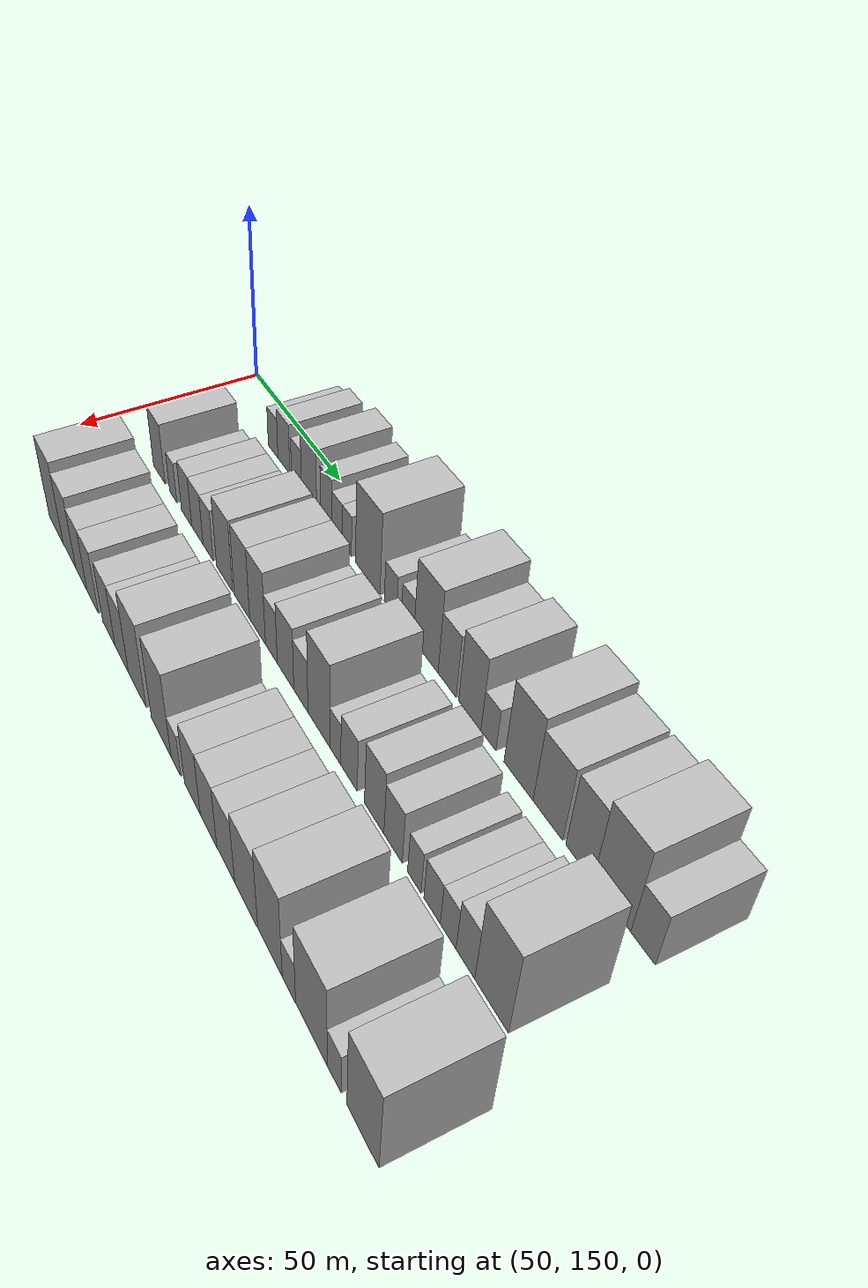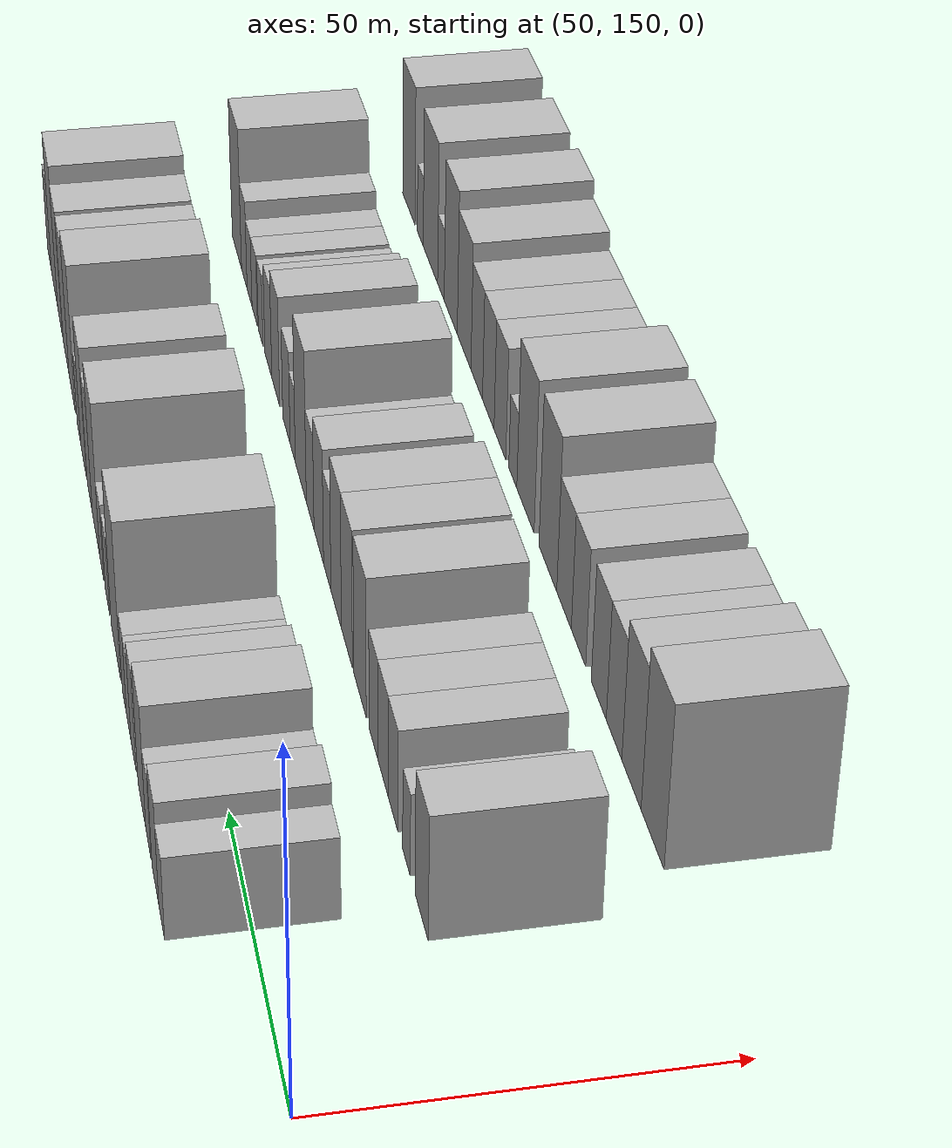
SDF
<sdf version="1.6">
 <world name="default">
  <model name="building_65">
   <static>1</static>
   <pose>50.0000 182.2817 0 0.000000 0.000000 0.000000</pose>
   <link name="link">
    <pose>0 0 6.00 0 0 0</pose>
    <collision name="collision"><geometry><box><size>20.0000 5.8374 12.0000</size></box></geometry></collision>
    <visual name="visual">
     <cast_shadows>0</cast_shadows>
     <geometry><box><size>20.0000 5.8374 12.0000</size></box></geometry>
     <material>
      <script>
       <uri>model://HANNAS_wall/materials/scripts</uri>
       <uri>model://HANNAS_wall/materials/textures</uri>
       <name>vrc/HANNAS_wall</name>
      </script>
     </material>
    </visual>
   </link>
  </model>
  <model name="building_66">
   <static>1</static>
   <pose>50.0000 188.6830 0 0.000000 0.000000 0.000000</pose>
   <link name="link">
    <pose>0 0 7.50 0 0 0</pose>
    <collision name="collision"><geometry><box><size>20.0000 6.9654 15.0000</size></box></geometry></collision>
    <visual name="visual">
     <cast_shadows>0</cast_shadows>
     <geometry><box><size>20.0000 6.9654 15.0000</size></box></geometry>
     <material>
      <script>
       <uri>model://HANNAS_wall/materials/scripts</uri>
       <uri>model://HANNAS_wall/materials/textures</uri>
       <name>vrc/HANNAS_wall</name>
      </script>
     </material>
    </visual>
   </link>
  </model>
  <model name="building_67">
   <static>1</static>
   <pose>50.0000 196.0091 0 0.000000 0.000000 0.000000</pose>
   <link name="link">
    <pose>0 0 6.00 0 0 0</pose>
    <collision name="collision"><geometry><box><size>20.0000 5.6867 12.0000</size></box></geometry></collision>
    <visual name="visual">
     <cast_shadows>0</cast_shadows>
     <geometry><box><size>20.0000 5.6867 12.0000</size></box></geometry>
     <material>
      <script>
       <uri>model://HANNAS_wall/materials/scripts</uri>
       <uri>model://HANNAS_wall/materials/textures</uri>
       <name>vrc/HANNAS_wall</name>
      </script>
     </material>
    </visual>
   </link>
  </model>
  <model name="building_68">
   <static>1</static>
   <pose>50.0000 203.0942 0 0.000000 0.000000 0.000000</pose>
   <link name="link">
    <pose>0 0 9.00 0 0 0</pose>
    <collision name="collision"><geometry><box><size>20.0000 8.4835 18.0000</size></box></geometry></collision>
    <visual name="visual">
     <cast_shadows>0</cast_shadows>
     <geometry><box><size>20.0000 8.4835 18.0000</size></box></geometry>
     <material>
      <script>
       <uri>model://HANNAS_wall/materials/scripts</uri>
       <uri>model://HANNAS_wall/materials/textures</uri>
       <name>vrc/HANNAS_wall</name>
      </script>
     </material>
    </visual>
   </link>
  </model>
  <model name="building_69">
   <static>1</static>
   <pose>50.0000 212.3702 0 0.000000 0.000000 0.000000</pose>
   <link name="link">
    <pose>0 0 7.50 0 0 0</pose>
    <collision name="collision"><geometry><box><size>20.0000 6.0687 15.0000</size></box></geometry></collision>
    <visual name="visual">
     <cast_shadows>0</cast_shadows>
     <geometry><box><size>20.0000 6.0687 15.0000</size></box></geometry>
     <material>
      <script>
       <uri>model://HANNAS_wall/materials/scripts</uri>
       <uri>model://HANNAS_wall/materials/textures</uri>
       <name>vrc/HANNAS_wall</name>
      </script>
     </material>
    </visual>
   </link>
  </model>
  <model name="building_70">
   <static>1</static>
   <pose>50.0000 218.1015 0 0.000000 0.000000 0.000000</pose>
   <link name="link">
    <pose>0 0 6.00 0 0 0</pose>
    <collision name="collision"><geometry><box><size>20.0000 5.3938 12.0000</size></box></geometry></collision>
    <visual name="visual">
     <cast_shadows>0</cast_shadows>
     <geometry><box><size>20.0000 5.3938 12.0000</size></box></geometry>
     <material>
      <script>
       <uri>model://HANNAS_wall/materials/scripts</uri>
       <uri>model://HANNAS_wall/materials/textures</uri>
       <name>vrc/HANNAS_wall</name>
      </script>
     </material>
    </visual>
   </link>
  </model>
  <model name="building_71">
   <static>1</static>
   <pose>50.0000 223.2240 0 0.000000 0.000000 0.000000</pose>
   <link name="link">
    <pose>0 0 6.00 0 0 0</pose>
    <collision name="collision"><geometry><box><size>20.0000 4.8514 12.0000</size></box></geometry></collision>
    <visual name="visual">
     <cast_shadows>0</cast_shadows>
     <geometry><box><size>20.0000 4.8514 12.0000</size></box></geometry>
     <material>
      <script>
       <uri>model://HANNAS_wall/materials/scripts</uri>
       <uri>model://HANNAS_wall/materials/textures</uri>
       <name>vrc/HANNAS_wall</name>
      </script>
     </material>
    </visual>
   </link>
  </model>
  <model name="building_72">
   <static>1</static>
   <pose>50.0000 233.6412 0 0.000000 0.000000 0.000000</pose>
   <link name="link">
    <pose>0 0 12.00 0 0 0</pose>
    <collision name="collision"><geometry><box><size>20.0000 11.9829 24.0000</size></box></geometry></collision>
    <visual name="visual">
     <cast_shadows>0</cast_shadows>
     <geometry><box><size>20.0000 11.9829 24.0000</size></box></geometry>
     <material>
      <script>
       <uri>model://HANNAS_wall/materials/scripts</uri>
       <uri>model://HANNAS_wall/materials/textures</uri>
       <name>vrc/HANNAS_wall</name>
      </script>
     </material>
    </visual>
   </link>
  </model>
  <model name="building_73">
   <static>1</static>
   <pose>50.0000 244.4710 0 0.000000 0.000000 0.000000</pose>
   <link name="link">
    <pose>0 0 6.00 0 0 0</pose>
    <collision name="collision"><geometry><box><size>20.0000 5.6769 12.0000</size></box></geometry></collision>
    <visual name="visual">
     <cast_shadows>0</cast_shadows>
     <geometry><box><size>20.0000 5.6769 12.0000</size></box></geometry>
     <material>
      <script>
       <uri>model://HANNAS_wall/materials/scripts</uri>
       <uri>model://HANNAS_wall/materials/textures</uri>
       <name>vrc/HANNAS_wall</name>
      </script>
     </material>
    </visual>
   </link>
  </model>
  <model name="building_74">
   <static>1</static>
   <pose>50.0000 252.1150 0 0.000000 0.000000 0.000000</pose>
   <link name="link">
    <pose>0 0 6.00 0 0 0</pose>
    <collision name="collision"><geometry><box><size>20.0000 5.6110 12.0000</size></box></geometry></collision>
    <visual name="visual">
     <cast_shadows>0</cast_shadows>
     <geometry><box><size>20.0000 5.6110 12.0000</size></box></geometry>
     <material>
      <script>
       <uri>model://HANNAS_wall/materials/scripts</uri>
       <uri>model://HANNAS_wall/materials/textures</uri>
       <name>vrc/HANNAS_wall</name>
      </script>
     </material>
    </visual>
   </link>
  </model>
  <model name="building_75">
   <static>1</static>
   <pose>50.0000 260.2213 0 0.000000 0.000000 0.000000</pose>
   <link name="link">
    <pose>0 0 12.00 0 0 0</pose>
    <collision name="collision"><geometry><box><size>20.0000 10.6017 24.0000</size></box></geometry></collision>
    <visual name="visual">
     <cast_shadows>0</cast_shadows>
     <geometry><box><size>20.0000 10.6017 24.0000</size></box></geometry>
     <material>
      <script>
       <uri>model://HANNAS_wall/materials/scripts</uri>
       <uri>model://HANNAS_wall/materials/textures</uri>
       <name>vrc/HANNAS_wall</name>
      </script>
     </material>
    </visual>
   </link>
  </model>
  <model name="building_76">
   <static>1</static>
   <pose>50.0000 269.2332 0 0.000000 0.000000 0.000000</pose>
   <link name="link">
    <pose>0 0 9.00 0 0 0</pose>
    <collision name="collision"><geometry><box><size>20.0000 7.4221 18.0000</size></box></geometry></collision>
    <visual name="visual">
     <cast_shadows>0</cast_shadows>
     <geometry><box><size>20.0000 7.4221 18.0000</size></box></geometry>
     <material>
      <script>
       <uri>model://HANNAS_wall/materials/scripts</uri>
       <uri>model://HANNAS_wall/materials/textures</uri>
       <name>vrc/HANNAS_wall</name>
      </script>
     </material>
    </visual>
   </link>
  </model>
  <model name="building_77">
   <static>1</static>
   <pose>50.0000 278.3002 0 0.000000 0.000000 0.000000</pose>
   <link name="link">
    <pose>0 0 10.50 0 0 0</pose>
    <collision name="collision"><geometry><box><size>20.0000 8.7118 21.0000</size></box></geometry></collision>
    <visual name="visual">
     <cast_shadows>0</cast_shadows>
     <geometry><box><size>20.0000 8.7118 21.0000</size></box></geometry>
     <material>
      <script>
       <uri>model://HANNAS_wall/materials/scripts</uri>
       <uri>model://HANNAS_wall/materials/textures</uri>
       <name>vrc/HANNAS_wall</name>
      </script>
     </material>
    </visual>
   </link>
  </model>
  <model name="building_78">
   <static>1</static>
   <pose>50.0000 285.4928 0 0.000000 0.000000 0.000000</pose>
   <link name="link">
    <pose>0 0 6.00 0 0 0</pose>
    <collision name="collision"><geometry><box><size>20.0000 5.6735 12.0000</size></box></geometry></collision>
    <visual name="visual">
     <cast_shadows>0</cast_shadows>
     <geometry><box><size>20.0000 5.6735 12.0000</size></box></geometry>
     <material>
      <script>
       <uri>model://HANNAS_wall/materials/scripts</uri>
       <uri>model://HANNAS_wall/materials/textures</uri>
       <name>vrc/HANNAS_wall</name>
      </script>
     </material>
    </visual>
   </link>
  </model>
  <model name="building_79">
   <static>1</static>
   <pose>50.0000 296.5106 0 0.000000 0.000000 0.000000</pose>
   <link name="link">
    <pose>0 0 12.00 0 0 0</pose>
    <collision name="collision"><geometry><box><size>20.0000 10.3621 24.0000</size></box></geometry></collision>
    <visual name="visual">
     <cast_shadows>0</cast_shadows>
     <geometry><box><size>20.0000 10.3621 24.0000</size></box></geometry>
     <material>
      <script>
       <uri>model://HANNAS_wall/materials/scripts</uri>
       <uri>model://HANNAS_wall/materials/textures</uri>
       <name>vrc/HANNAS_wall</name>
      </script>
     </material>
    </visual>
   </link>
  </model>
  <model name="building_80">
   <static>1</static>
   <pose>50.0000 306.6977 0 0.000000 0.000000 0.000000</pose>
   <link name="link">
    <pose>0 0 10.50 0 0 0</pose>
    <collision name="collision"><geometry><box><size>20.0000 10.0122 21.0000</size></box></geometry></collision>
    <visual name="visual">
     <cast_shadows>0</cast_shadows>
     <geometry><box><size>20.0000 10.0122 21.0000</size></box></geometry>
     <material>
      <script>
       <uri>model://HANNAS_wall/materials/scripts</uri>
       <uri>model://HANNAS_wall/materials/textures</uri>
       <name>vrc/HANNAS_wall</name>
      </script>
     </material>
    </visual>
   </link>
  </model>
  <model name="building_81">
   <static>1</static>
   <pose>50.0000 317.0325 0 0.000000 0.000000 0.000000</pose>
   <link name="link">
    <pose>0 0 10.50 0 0 0</pose>
    <collision name="collision"><geometry><box><size>20.0000 8.6572 21.0000</size></box></geometry></collision>
    <visual name="visual">
     <cast_shadows>0</cast_shadows>
     <geometry><box><size>20.0000 8.6572 21.0000</size></box></geometry>
     <material>
      <script>
       <uri>model://HANNAS_wall/materials/scripts</uri>
       <uri>model://HANNAS_wall/materials/textures</uri>
       <name>vrc/HANNAS_wall</name>
      </script>
     </material>
    </visual>
   </link>
  </model>
  <model name="building_82">
   <static>1</static>
   <pose>50.0000 327.0471 0 0.000000 0.000000 0.000000</pose>
   <link name="link">
    <pose>0 0 12.00 0 0 0</pose>
    <collision name="collision"><geometry><box><size>20.0000 11.3720 24.0000</size></box></geometry></collision>
    <visual name="visual">
     <cast_shadows>0</cast_shadows>
     <geometry><box><size>20.0000 11.3720 24.0000</size></box></geometry>
     <material>
      <script>
       <uri>model://HANNAS_wall/materials/scripts</uri>
       <uri>model://HANNAS_wall/materials/textures</uri>
       <name>vrc/HANNAS_wall</name>
      </script>
     </material>
    </visual>
   </link>
  </model>
  <model name="building_83">
   <static>1</static>
   <pose>50.0000 336.2310 0 0.000000 0.000000 0.000000</pose>
   <link name="link">
    <pose>0 0 7.50 0 0 0</pose>
    <collision name="collision"><geometry><box><size>20.0000 6.9957 15.0000</size></box></geometry></collision>
    <visual name="visual">
     <cast_shadows>0</cast_shadows>
     <geometry><box><size>20.0000 6.9957 15.0000</size></box></geometry>
     <material>
      <script>
       <uri>model://HANNAS_wall/materials/scripts</uri>
       <uri>model://HANNAS_wall/materials/textures</uri>
       <name>vrc/HANNAS_wall</name>
      </script>
     </material>
    </visual>
   </link>
  </model>
  <model name="building_135">
   <static>1</static>
   <pose>79.0000 178.1887 0 0.000000 0.000000 0.000000</pose>
   <link name="link">
    <pose>0 0 9.00 0 0 0</pose>
    <collision name="collision"><geometry><box><size>20.0000 8.0300 18.0000</size></box></geometry></collision>
    <visual name="visual">
     <cast_shadows>0</cast_shadows>
     <geometry><box><size>20.0000 8.0300 18.0000</size></box></geometry>
     <material>
      <script>
       <uri>model://HANNAS_wall/materials/scripts</uri>
       <uri>model://HANNAS_wall/materials/textures</uri>
       <name>vrc/HANNAS_wall</name>
      </script>
     </material>
    </visual>
   </link>
  </model>
  <model name="building_136">
   <static>1</static>
   <pose>79.0000 187.6261 0 0.000000 0.000000 0.000000</pose>
   <link name="link">
    <pose>0 0 6.00 0 0 0</pose>
    <collision name="collision"><geometry><box><size>20.0000 4.8449 12.0000</size></box></geometry></collision>
    <visual name="visual">
     <cast_shadows>0</cast_shadows>
     <geometry><box><size>20.0000 4.8449 12.0000</size></box></geometry>
     <material>
      <script>
       <uri>model://HANNAS_wall/materials/scripts</uri>
       <uri>model://HANNAS_wall/materials/textures</uri>
       <name>vrc/HANNAS_wall</name>
      </script>
     </material>
    </visual>
   </link>
  </model>
  <model name="building_137">
   <static>1</static>
   <pose>79.0000 196.3759 0 0.000000 0.000000 0.000000</pose>
   <link name="link">
    <pose>0 0 7.50 0 0 0</pose>
    <collision name="collision"><geometry><box><size>20.0000 6.6547 15.0000</size></box></geometry></collision>
    <visual name="visual">
     <cast_shadows>0</cast_shadows>
     <geometry><box><size>20.0000 6.6547 15.0000</size></box></geometry>
     <material>
      <script>
       <uri>model://HANNAS_wall/materials/scripts</uri>
       <uri>model://HANNAS_wall/materials/textures</uri>
       <name>vrc/HANNAS_wall</name>
      </script>
     </material>
    </visual>
   </link>
  </model>
  <model name="building_138">
   <static>1</static>
   <pose>79.0000 203.2226 0 0.000000 0.000000 0.000000</pose>
   <link name="link">
    <pose>0 0 7.50 0 0 0</pose>
    <collision name="collision"><geometry><box><size>20.0000 7.0387 15.0000</size></box></geometry></collision>
    <visual name="visual">
     <cast_shadows>0</cast_shadows>
     <geometry><box><size>20.0000 7.0387 15.0000</size></box></geometry>
     <material>
      <script>
       <uri>model://HANNAS_wall/materials/scripts</uri>
       <uri>model://HANNAS_wall/materials/textures</uri>
       <name>vrc/HANNAS_wall</name>
      </script>
     </material>
    </visual>
   </link>
  </model>
  <model name="building_139">
   <static>1</static>
   <pose>79.0000 209.8285 0 0.000000 0.000000 0.000000</pose>
   <link name="link">
    <pose>0 0 7.50 0 0 0</pose>
    <collision name="collision"><geometry><box><size>20.0000 6.1731 15.0000</size></box></geometry></collision>
    <visual name="visual">
     <cast_shadows>0</cast_shadows>
     <geometry><box><size>20.0000 6.1731 15.0000</size></box></geometry>
     <material>
      <script>
       <uri>model://HANNAS_wall/materials/scripts</uri>
       <uri>model://HANNAS_wall/materials/textures</uri>
       <name>vrc/HANNAS_wall</name>
      </script>
     </material>
    </visual>
   </link>
  </model>
  <model name="building_140">
   <static>1</static>
   <pose>79.0000 219.5219 0 0.000000 0.000000 0.000000</pose>
   <link name="link">
    <pose>0 0 10.50 0 0 0</pose>
    <collision name="collision"><geometry><box><size>20.0000 9.2137 21.0000</size></box></geometry></collision>
    <visual name="visual">
     <cast_shadows>0</cast_shadows>
     <geometry><box><size>20.0000 9.2137 21.0000</size></box></geometry>
     <material>
      <script>
       <uri>model://HANNAS_wall/materials/scripts</uri>
       <uri>model://HANNAS_wall/materials/textures</uri>
       <name>vrc/HANNAS_wall</name>
      </script>
     </material>
    </visual>
   </link>
  </model>
  <model name="building_141">
   <static>1</static>
   <pose>79.0000 229.3763 0 0.000000 0.000000 0.000000</pose>
   <link name="link">
    <pose>0 0 10.50 0 0 0</pose>
    <collision name="collision"><geometry><box><size>20.0000 8.4952 21.0000</size></box></geometry></collision>
    <visual name="visual">
     <cast_shadows>0</cast_shadows>
     <geometry><box><size>20.0000 8.4952 21.0000</size></box></geometry>
     <material>
      <script>
       <uri>model://HANNAS_wall/materials/scripts</uri>
       <uri>model://HANNAS_wall/materials/textures</uri>
       <name>vrc/HANNAS_wall</name>
      </script>
     </material>
    </visual>
   </link>
  </model>
  <model name="building_142">
   <static>1</static>
   <pose>79.0000 237.8317 0 0.000000 0.000000 0.000000</pose>
   <link name="link">
    <pose>0 0 10.50 0 0 0</pose>
    <collision name="collision"><geometry><box><size>20.0000 8.4155 21.0000</size></box></geometry></collision>
    <visual name="visual">
     <cast_shadows>0</cast_shadows>
     <geometry><box><size>20.0000 8.4155 21.0000</size></box></geometry>
     <material>
      <script>
       <uri>model://HANNAS_wall/materials/scripts</uri>
       <uri>model://HANNAS_wall/materials/textures</uri>
       <name>vrc/HANNAS_wall</name>
      </script>
     </material>
    </visual>
   </link>
  </model>
  <model name="building_143">
   <static>1</static>
   <pose>79.0000 245.0750 0 0.000000 0.000000 0.000000</pose>
   <link name="link">
    <pose>0 0 7.50 0 0 0</pose>
    <collision name="collision"><geometry><box><size>20.0000 6.0711 15.0000</size></box></geometry></collision>
    <visual name="visual">
     <cast_shadows>0</cast_shadows>
     <geometry><box><size>20.0000 6.0711 15.0000</size></box></geometry>
     <material>
      <script>
       <uri>model://HANNAS_wall/materials/scripts</uri>
       <uri>model://HANNAS_wall/materials/textures</uri>
       <name>vrc/HANNAS_wall</name>
      </script>
     </material>
    </visual>
   </link>
  </model>
  <model name="building_144">
   <static>1</static>
   <pose>79.0000 252.1867 0 0.000000 0.000000 0.000000</pose>
   <link name="link">
    <pose>0 0 9.00 0 0 0</pose>
    <collision name="collision"><geometry><box><size>20.0000 8.1524 18.0000</size></box></geometry></collision>
    <visual name="visual">
     <cast_shadows>0</cast_shadows>
     <geometry><box><size>20.0000 8.1524 18.0000</size></box></geometry>
     <material>
      <script>
       <uri>model://HANNAS_wall/materials/scripts</uri>
       <uri>model://HANNAS_wall/materials/textures</uri>
       <name>vrc/HANNAS_wall</name>
      </script>
     </material>
    </visual>
   </link>
  </model>
  <model name="building_145">
   <static>1</static>
   <pose>79.0000 259.6365 0 0.000000 0.000000 0.000000</pose>
   <link name="link">
    <pose>0 0 7.50 0 0 0</pose>
    <collision name="collision"><geometry><box><size>20.0000 6.7473 15.0000</size></box></geometry></collision>
    <visual name="visual">
     <cast_shadows>0</cast_shadows>
     <geometry><box><size>20.0000 6.7473 15.0000</size></box></geometry>
     <material>
      <script>
       <uri>model://HANNAS_wall/materials/scripts</uri>
       <uri>model://HANNAS_wall/materials/textures</uri>
       <name>vrc/HANNAS_wall</name>
      </script>
     </material>
    </visual>
   </link>
  </model>
  <model name="building_146">
   <static>1</static>
   <pose>79.0000 267.9897 0 0.000000 0.000000 0.000000</pose>
   <link name="link">
    <pose>0 0 12.00 0 0 0</pose>
    <collision name="collision"><geometry><box><size>20.0000 9.9591 24.0000</size></box></geometry></collision>
    <visual name="visual">
     <cast_shadows>0</cast_shadows>
     <geometry><box><size>20.0000 9.9591 24.0000</size></box></geometry>
     <material>
      <script>
       <uri>model://HANNAS_wall/materials/scripts</uri>
       <uri>model://HANNAS_wall/materials/textures</uri>
       <name>vrc/HANNAS_wall</name>
      </script>
     </material>
    </visual>
   </link>
  </model>
  <model name="building_147">
   <static>1</static>
   <pose>79.0000 275.4000 0 0.000000 0.000000 0.000000</pose>
   <link name="link">
    <pose>0 0 6.00 0 0 0</pose>
    <collision name="collision"><geometry><box><size>20.0000 4.8614 12.0000</size></box></geometry></collision>
    <visual name="visual">
     <cast_shadows>0</cast_shadows>
     <geometry><box><size>20.0000 4.8614 12.0000</size></box></geometry>
     <material>
      <script>
       <uri>model://HANNAS_wall/materials/scripts</uri>
       <uri>model://HANNAS_wall/materials/textures</uri>
       <name>vrc/HANNAS_wall</name>
      </script>
     </material>
    </visual>
   </link>
  </model>
  <model name="building_148">
   <static>1</static>
   <pose>79.0000 281.3411 0 0.000000 0.000000 0.000000</pose>
   <link name="link">
    <pose>0 0 7.50 0 0 0</pose>
    <collision name="collision"><geometry><box><size>20.0000 7.0207 15.0000</size></box></geometry></collision>
    <visual name="visual">
     <cast_shadows>0</cast_shadows>
     <geometry><box><size>20.0000 7.0207 15.0000</size></box></geometry>
     <material>
      <script>
       <uri>model://HANNAS_wall/materials/scripts</uri>
       <uri>model://HANNAS_wall/materials/textures</uri>
       <name>vrc/HANNAS_wall</name>
      </script>
     </material>
    </visual>
   </link>
  </model>
  <model name="building_149">
   <static>1</static>
   <pose>79.0000 291.7691 0 0.000000 0.000000 0.000000</pose>
   <link name="link">
    <pose>0 0 9.00 0 0 0</pose>
    <collision name="collision"><geometry><box><size>20.0000 7.8353 18.0000</size></box></geometry></collision>
    <visual name="visual">
     <cast_shadows>0</cast_shadows>
     <geometry><box><size>20.0000 7.8353 18.0000</size></box></geometry>
     <material>
      <script>
       <uri>model://HANNAS_wall/materials/scripts</uri>
       <uri>model://HANNAS_wall/materials/textures</uri>
       <name>vrc/HANNAS_wall</name>
      </script>
     </material>
    </visual>
   </link>
  </model>
  <model name="building_150">
   <static>1</static>
   <pose>79.0000 299.2322 0 0.000000 0.000000 0.000000</pose>
   <link name="link">
    <pose>0 0 7.50 0 0 0</pose>
    <collision name="collision"><geometry><box><size>20.0000 7.0910 15.0000</size></box></geometry></collision>
    <visual name="visual">
     <cast_shadows>0</cast_shadows>
     <geometry><box><size>20.0000 7.0910 15.0000</size></box></geometry>
     <material>
      <script>
       <uri>model://HANNAS_wall/materials/scripts</uri>
       <uri>model://HANNAS_wall/materials/textures</uri>
       <name>vrc/HANNAS_wall</name>
      </script>
     </material>
    </visual>
   </link>
  </model>
  <model name="building_151">
   <static>1</static>
   <pose>79.0000 307.2653 0 0.000000 0.000000 0.000000</pose>
   <link name="link">
    <pose>0 0 6.00 0 0 0</pose>
    <collision name="collision"><geometry><box><size>20.0000 4.9753 12.0000</size></box></geometry></collision>
    <visual name="visual">
     <cast_shadows>0</cast_shadows>
     <geometry><box><size>20.0000 4.9753 12.0000</size></box></geometry>
     <material>
      <script>
       <uri>model://HANNAS_wall/materials/scripts</uri>
       <uri>model://HANNAS_wall/materials/textures</uri>
       <name>vrc/HANNAS_wall</name>
      </script>
     </material>
    </visual>
   </link>
  </model>
  <model name="building_152">
   <static>1</static>
   <pose>79.0000 313.6646 0 0.000000 0.000000 0.000000</pose>
   <link name="link">
    <pose>0 0 6.00 0 0 0</pose>
    <collision name="collision"><geometry><box><size>20.0000 5.8233 12.0000</size></box></geometry></collision>
    <visual name="visual">
     <cast_shadows>0</cast_shadows>
     <geometry><box><size>20.0000 5.8233 12.0000</size></box></geometry>
     <material>
      <script>
       <uri>model://HANNAS_wall/materials/scripts</uri>
       <uri>model://HANNAS_wall/materials/textures</uri>
       <name>vrc/HANNAS_wall</name>
      </script>
     </material>
    </visual>
   </link>
  </model>
  <model name="building_153">
   <static>1</static>
   <pose>79.0000 319.3100 0 0.000000 0.000000 0.000000</pose>
   <link name="link">
    <pose>0 0 6.00 0 0 0</pose>
    <collision name="collision"><geometry><box><size>20.0000 5.4674 12.0000</size></box></geometry></collision>
    <visual name="visual">
     <cast_shadows>0</cast_shadows>
     <geometry><box><size>20.0000 5.4674 12.0000</size></box></geometry>
     <material>
      <script>
       <uri>model://HANNAS_wall/materials/scripts</uri>
       <uri>model://HANNAS_wall/materials/textures</uri>
       <name>vrc/HANNAS_wall</name>
      </script>
     </material>
    </visual>
   </link>
  </model>
  <model name="building_154">
   <static>1</static>
   <pose>79.0000 325.1521 0 0.000000 0.000000 0.000000</pose>
   <link name="link">
    <pose>0 0 7.50 0 0 0</pose>
    <collision name="collision"><geometry><box><size>20.0000 6.2168 15.0000</size></box></geometry></collision>
    <visual name="visual">
     <cast_shadows>0</cast_shadows>
     <geometry><box><size>20.0000 6.2168 15.0000</size></box></geometry>
     <material>
      <script>
       <uri>model://HANNAS_wall/materials/scripts</uri>
       <uri>model://HANNAS_wall/materials/textures</uri>
       <name>vrc/HANNAS_wall</name>
      </script>
     </material>
    </visual>
   </link>
  </model>
  <model name="building_155">
   <static>1</static>
   <pose>79.0000 333.5930 0 0.000000 0.000000 0.000000</pose>
   <link name="link">
    <pose>0 0 12.00 0 0 0</pose>
    <collision name="collision"><geometry><box><size>20.0000 10.6649 24.0000</size></box></geometry></collision>
    <visual name="visual">
     <cast_shadows>0</cast_shadows>
     <geometry><box><size>20.0000 10.6649 24.0000</size></box></geometry>
     <material>
      <script>
       <uri>model://HANNAS_wall/materials/scripts</uri>
       <uri>model://HANNAS_wall/materials/textures</uri>
       <name>vrc/HANNAS_wall</name>
      </script>
     </material>
    </visual>
   </link>
  </model>
  <model name="building_215">
   <static>1</static>
   <pose>108.0000 186.5673 0 0.000000 0.000000 0.000000</pose>
   <link name="link">
    <pose>0 0 12.00 0 0 0</pose>
    <collision name="collision"><geometry><box><size>20.0000 10.7839 24.0000</size></box></geometry></collision>
    <visual name="visual">
     <cast_shadows>0</cast_shadows>
     <geometry><box><size>20.0000 10.7839 24.0000</size></box></geometry>
     <material>
      <script>
       <uri>model://HANNAS_wall/materials/scripts</uri>
       <uri>model://HANNAS_wall/materials/textures</uri>
       <name>vrc/HANNAS_wall</name>
      </script>
     </material>
    </visual>
   </link>
  </model>
  <model name="building_216">
   <static>1</static>
   <pose>108.0000 196.6772 0 0.000000 0.000000 0.000000</pose>
   <link name="link">
    <pose>0 0 10.50 0 0 0</pose>
    <collision name="collision"><geometry><box><size>20.0000 9.4358 21.0000</size></box></geometry></collision>
    <visual name="visual">
     <cast_shadows>0</cast_shadows>
     <geometry><box><size>20.0000 9.4358 21.0000</size></box></geometry>
     <material>
      <script>
       <uri>model://HANNAS_wall/materials/scripts</uri>
       <uri>model://HANNAS_wall/materials/textures</uri>
       <name>vrc/HANNAS_wall</name>
      </script>
     </material>
    </visual>
   </link>
  </model>
  <model name="building_217">
   <static>1</static>
   <pose>108.0000 205.3695 0 0.000000 0.000000 0.000000</pose>
   <link name="link">
    <pose>0 0 9.00 0 0 0</pose>
    <collision name="collision"><geometry><box><size>20.0000 7.9489 18.0000</size></box></geometry></collision>
    <visual name="visual">
     <cast_shadows>0</cast_shadows>
     <geometry><box><size>20.0000 7.9489 18.0000</size></box></geometry>
     <material>
      <script>
       <uri>model://HANNAS_wall/materials/scripts</uri>
       <uri>model://HANNAS_wall/materials/textures</uri>
       <name>vrc/HANNAS_wall</name>
      </script>
     </material>
    </visual>
   </link>
  </model>
  <model name="building_218">
   <static>1</static>
   <pose>108.0000 213.3109 0 0.000000 0.000000 0.000000</pose>
   <link name="link">
    <pose>0 0 9.00 0 0 0</pose>
    <collision name="collision"><geometry><box><size>20.0000 7.9339 18.0000</size></box></geometry></collision>
    <visual name="visual">
     <cast_shadows>0</cast_shadows>
     <geometry><box><size>20.0000 7.9339 18.0000</size></box></geometry>
     <material>
      <script>
       <uri>model://HANNAS_wall/materials/scripts</uri>
       <uri>model://HANNAS_wall/materials/textures</uri>
       <name>vrc/HANNAS_wall</name>
      </script>
     </material>
    </visual>
   </link>
  </model>
  <model name="building_219">
   <static>1</static>
   <pose>108.0000 224.2773 0 0.000000 0.000000 0.000000</pose>
   <link name="link">
    <pose>0 0 9.00 0 0 0</pose>
    <collision name="collision"><geometry><box><size>20.0000 7.9989 18.0000</size></box></geometry></collision>
    <visual name="visual">
     <cast_shadows>0</cast_shadows>
     <geometry><box><size>20.0000 7.9989 18.0000</size></box></geometry>
     <material>
      <script>
       <uri>model://HANNAS_wall/materials/scripts</uri>
       <uri>model://HANNAS_wall/materials/textures</uri>
       <name>vrc/HANNAS_wall</name>
      </script>
     </material>
    </visual>
   </link>
  </model>
  <model name="building_220">
   <static>1</static>
   <pose>108.0000 232.4766 0 0.000000 0.000000 0.000000</pose>
   <link name="link">
    <pose>0 0 9.00 0 0 0</pose>
    <collision name="collision"><geometry><box><size>20.0000 8.3998 18.0000</size></box></geometry></collision>
    <visual name="visual">
     <cast_shadows>0</cast_shadows>
     <geometry><box><size>20.0000 8.3998 18.0000</size></box></geometry>
     <material>
      <script>
       <uri>model://HANNAS_wall/materials/scripts</uri>
       <uri>model://HANNAS_wall/materials/textures</uri>
       <name>vrc/HANNAS_wall</name>
      </script>
     </material>
    </visual>
   </link>
  </model>
  <model name="building_221">
   <static>1</static>
   <pose>108.0000 242.0030 0 0.000000 0.000000 0.000000</pose>
   <link name="link">
    <pose>0 0 12.00 0 0 0</pose>
    <collision name="collision"><geometry><box><size>20.0000 10.6530 24.0000</size></box></geometry></collision>
    <visual name="visual">
     <cast_shadows>0</cast_shadows>
     <geometry><box><size>20.0000 10.6530 24.0000</size></box></geometry>
     <material>
      <script>
       <uri>model://HANNAS_wall/materials/scripts</uri>
       <uri>model://HANNAS_wall/materials/textures</uri>
       <name>vrc/HANNAS_wall</name>
      </script>
     </material>
    </visual>
   </link>
  </model>
  <model name="building_222">
   <static>1</static>
   <pose>108.0000 255.8173 0 0.000000 0.000000 0.000000</pose>
   <link name="link">
    <pose>0 0 12.00 0 0 0</pose>
    <collision name="collision"><geometry><box><size>20.0000 10.9755 24.0000</size></box></geometry></collision>
    <visual name="visual">
     <cast_shadows>0</cast_shadows>
     <geometry><box><size>20.0000 10.9755 24.0000</size></box></geometry>
     <material>
      <script>
       <uri>model://HANNAS_wall/materials/scripts</uri>
       <uri>model://HANNAS_wall/materials/textures</uri>
       <name>vrc/HANNAS_wall</name>
      </script>
     </material>
    </visual>
   </link>
  </model>
  <model name="building_223">
   <static>1</static>
   <pose>108.0000 263.9285 0 0.000000 0.000000 0.000000</pose>
   <link name="link">
    <pose>0 0 6.00 0 0 0</pose>
    <collision name="collision"><geometry><box><size>20.0000 5.2470 12.0000</size></box></geometry></collision>
    <visual name="visual">
     <cast_shadows>0</cast_shadows>
     <geometry><box><size>20.0000 5.2470 12.0000</size></box></geometry>
     <material>
      <script>
       <uri>model://HANNAS_wall/materials/scripts</uri>
       <uri>model://HANNAS_wall/materials/textures</uri>
       <name>vrc/HANNAS_wall</name>
      </script>
     </material>
    </visual>
   </link>
  </model>
  <model name="building_224">
   <static>1</static>
   <pose>108.0000 272.5349 0 0.000000 0.000000 0.000000</pose>
   <link name="link">
    <pose>0 0 9.00 0 0 0</pose>
    <collision name="collision"><geometry><box><size>20.0000 7.9658 18.0000</size></box></geometry></collision>
    <visual name="visual">
     <cast_shadows>0</cast_shadows>
     <geometry><box><size>20.0000 7.9658 18.0000</size></box></geometry>
     <material>
      <script>
       <uri>model://HANNAS_wall/materials/scripts</uri>
       <uri>model://HANNAS_wall/materials/textures</uri>
       <name>vrc/HANNAS_wall</name>
      </script>
     </material>
    </visual>
   </link>
  </model>
  <model name="building_225">
   <static>1</static>
   <pose>108.0000 280.5623 0 0.000000 0.000000 0.000000</pose>
   <link name="link">
    <pose>0 0 9.00 0 0 0</pose>
    <collision name="collision"><geometry><box><size>20.0000 8.0891 18.0000</size></box></geometry></collision>
    <visual name="visual">
     <cast_shadows>0</cast_shadows>
     <geometry><box><size>20.0000 8.0891 18.0000</size></box></geometry>
     <material>
      <script>
       <uri>model://HANNAS_wall/materials/scripts</uri>
       <uri>model://HANNAS_wall/materials/textures</uri>
       <name>vrc/HANNAS_wall</name>
      </script>
     </material>
    </visual>
   </link>
  </model>
  <model name="building_226">
   <static>1</static>
   <pose>108.0000 288.7895 0 0.000000 0.000000 0.000000</pose>
   <link name="link">
    <pose>0 0 9.00 0 0 0</pose>
    <collision name="collision"><geometry><box><size>20.0000 8.3652 18.0000</size></box></geometry></collision>
    <visual name="visual">
     <cast_shadows>0</cast_shadows>
     <geometry><box><size>20.0000 8.3652 18.0000</size></box></geometry>
     <material>
      <script>
       <uri>model://HANNAS_wall/materials/scripts</uri>
       <uri>model://HANNAS_wall/materials/textures</uri>
       <name>vrc/HANNAS_wall</name>
      </script>
     </material>
    </visual>
   </link>
  </model>
  <model name="building_227">
   <static>1</static>
   <pose>108.0000 298.0844 0 0.000000 0.000000 0.000000</pose>
   <link name="link">
    <pose>0 0 10.50 0 0 0</pose>
    <collision name="collision"><geometry><box><size>20.0000 10.2246 21.0000</size></box></geometry></collision>
    <visual name="visual">
     <cast_shadows>0</cast_shadows>
     <geometry><box><size>20.0000 10.2246 21.0000</size></box></geometry>
     <material>
      <script>
       <uri>model://HANNAS_wall/materials/scripts</uri>
       <uri>model://HANNAS_wall/materials/textures</uri>
       <name>vrc/HANNAS_wall</name>
      </script>
     </material>
    </visual>
   </link>
  </model>
  <model name="building_228">
   <static>1</static>
   <pose>108.0000 308.2758 0 0.000000 0.000000 0.000000</pose>
   <link name="link">
    <pose>0 0 12.00 0 0 0</pose>
    <collision name="collision"><geometry><box><size>20.0000 10.1583 24.0000</size></box></geometry></collision>
    <visual name="visual">
     <cast_shadows>0</cast_shadows>
     <geometry><box><size>20.0000 10.1583 24.0000</size></box></geometry>
     <material>
      <script>
       <uri>model://HANNAS_wall/materials/scripts</uri>
       <uri>model://HANNAS_wall/materials/textures</uri>
       <name>vrc/HANNAS_wall</name>
      </script>
     </material>
    </visual>
   </link>
  </model>
  <model name="building_229">
   <static>1</static>
   <pose>108.0000 316.0092 0 0.000000 0.000000 0.000000</pose>
   <link name="link">
    <pose>0 0 6.00 0 0 0</pose>
    <collision name="collision"><geometry><box><size>20.0000 5.3085 12.0000</size></box></geometry></collision>
    <visual name="visual">
     <cast_shadows>0</cast_shadows>
     <geometry><box><size>20.0000 5.3085 12.0000</size></box></geometry>
     <material>
      <script>
       <uri>model://HANNAS_wall/materials/scripts</uri>
       <uri>model://HANNAS_wall/materials/textures</uri>
       <name>vrc/HANNAS_wall</name>
      </script>
     </material>
    </visual>
   </link>
  </model>
  <model name="building_230">
   <static>1</static>
   <pose>108.0000 324.5945 0 0.000000 0.000000 0.000000</pose>
   <link name="link">
    <pose>0 0 12.00 0 0 0</pose>
    <collision name="collision"><geometry><box><size>20.0000 11.8621 24.0000</size></box></geometry></collision>
    <visual name="visual">
     <cast_shadows>0</cast_shadows>
     <geometry><box><size>20.0000 11.8621 24.0000</size></box></geometry>
     <material>
      <script>
       <uri>model://HANNAS_wall/materials/scripts</uri>
       <uri>model://HANNAS_wall/materials/textures</uri>
       <name>vrc/HANNAS_wall</name>
      </script>
     </material>
    </visual>
   </link>
  </model>
  <model name="building_231">
   <static>1</static>
   <pose>108.0000 333.0503 0 0.000000 0.000000 0.000000</pose>
   <link name="link">
    <pose>0 0 6.00 0 0 0</pose>
    <collision name="collision"><geometry><box><size>20.0000 5.0495 12.0000</size></box></geometry></collision>
    <visual name="visual">
     <cast_shadows>0</cast_shadows>
     <geometry><box><size>20.0000 5.0495 12.0000</size></box></geometry>
     <material>
      <script>
       <uri>model://HANNAS_wall/materials/scripts</uri>
       <uri>model://HANNAS_wall/materials/textures</uri>
       <name>vrc/HANNAS_wall</name>
      </script>
     </material>
    </visual>
   </link>
  </model>
  <model name="building_232">
   <static>1</static>
   <pose>108.0000 342.9438 0 0.000000 0.000000 0.000000</pose>
   <link name="link">
    <pose>0 0 12.00 0 0 0</pose>
    <collision name="collision"><geometry><box><size>20.0000 10.7374 24.0000</size></box></geometry></collision>
    <visual name="visual">
     <cast_shadows>0</cast_shadows>
     <geometry><box><size>20.0000 10.7374 24.0000</size></box></geometry>
     <material>
      <script>
       <uri>model://HANNAS_wall/materials/scripts</uri>
       <uri>model://HANNAS_wall/materials/textures</uri>
       <name>vrc/HANNAS_wall</name>
      </script>
     </material>
    </visual>
   </link>
  </model>
 </world>
</sdf>
